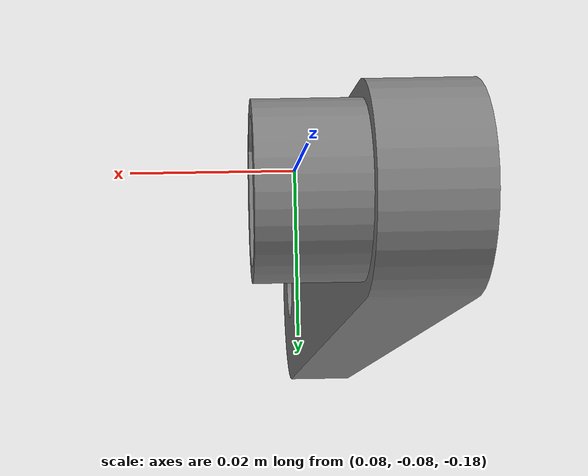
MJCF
<?xml version="1.0" encoding="UTF-8"?>
<mujoco>
<compiler meshdir="assets"/>
  <asset>
    <mesh file="2026_fei_ka_lun_tui____left_behind_thigh_3__lun_tui_xiao_tui__1.stl"/>
  </asset>

  <default>
  <default class="left_behind_thigh_default">
  <geom contype="0" conaffinity="0"/>
  </default>
  </default>

  <worldbody>
  <body name="left_behind_thigh_body" pos="0 0 0">
    <geom type="mesh" mesh="2026_fei_ka_lun_tui____left_behind_thigh_3__lun_tui_xiao_tui__1" mass="0.0091" class="left_behind_thigh_default"/>
  </body>
  </worldbody>
</mujoco>
